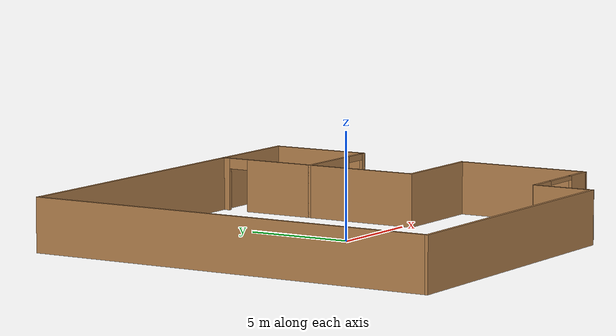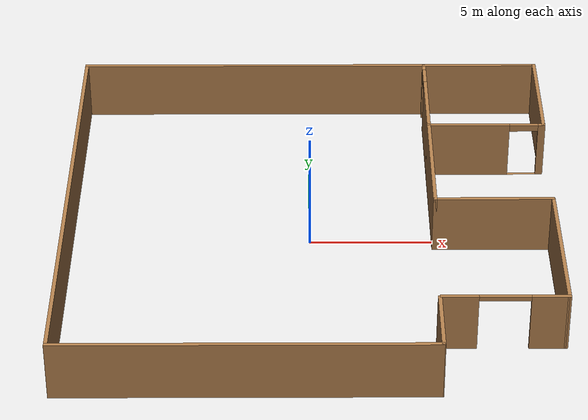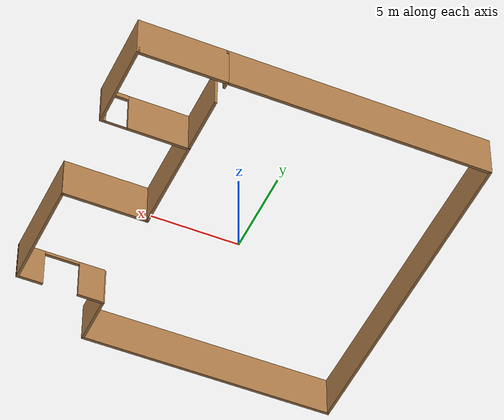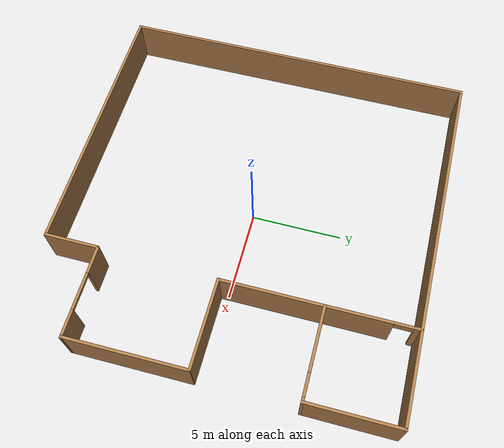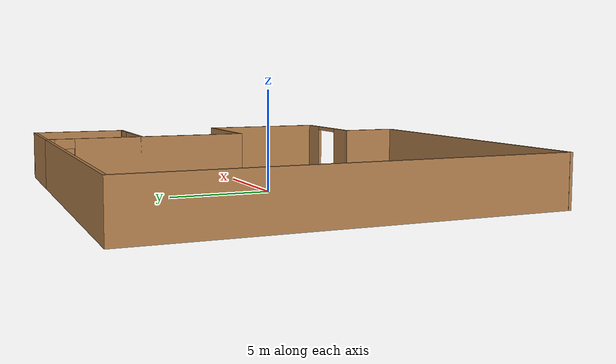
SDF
<?xml version='1.0'?>
<sdf version='1.7'>
  <model name='supermarket_worldo'>
    <pose>0.061503 0.047234 0 0 -0 0</pose>
    <link name='Wall_11'>
      <collision name='Wall_11_Collision'>
        <geometry>
          <box>
            <size>3 0.15 2.5</size>
          </box>
        </geometry>
        <pose>0 0 1.25 0 -0 0</pose>
      </collision>
      <visual name='Wall_11_Visual'>
        <pose>0 0 1.25 0 -0 0</pose>
        <geometry>
          <box>
            <size>3 0.15 2.5</size>
          </box>
        </geometry>
        <material>
          <script>
            <uri>file://media/materials/scripts/gazebo.material</uri>
            <name>Gazebo/Wood</name>
          </script>
          <ambient>0.709804 0.513726 0.352941 1</ambient>
        </material>
        <meta>
          <layer>0</layer>
        </meta>
      </visual>
      <pose>4.86312 -8.45219 0 0 -0 -1.5708</pose>
    </link>
    <link name='Wall_12'>
      <collision name='Wall_12_Collision'>
        <geometry>
          <box>
            <size>14.8327 0.15 2.5</size>
          </box>
        </geometry>
        <pose>0 0 1.25 0 -0 0</pose>
      </collision>
      <visual name='Wall_12_Visual'>
        <pose>0 0 1.25 0 -0 0</pose>
        <geometry>
          <box>
            <size>14.8327 0.15 2.5</size>
          </box>
        </geometry>
        <material>
          <script>
            <uri>file://media/materials/scripts/gazebo.material</uri>
            <name>Gazebo/Wood</name>
          </script>
          <ambient>0.709804 0.513726 0.352941 1</ambient>
        </material>
        <meta>
          <layer>0</layer>
        </meta>
      </visual>
      <pose>-2.50865 -9.87719 0 0 -0 3.14159</pose>
    </link>
    <link name='Wall_15'>
      <collision name='Wall_15_Collision'>
        <geometry>
          <box>
            <size>5 0.15 2.5</size>
          </box>
        </geometry>
        <pose>0 0 1.25 0 -0 0</pose>
      </collision>
      <visual name='Wall_15_Visual'>
        <pose>0 0 1.25 0 -0 0</pose>
        <geometry>
          <box>
            <size>5 0.15 2.5</size>
          </box>
        </geometry>
        <material>
          <script>
            <uri>file://media/materials/scripts/gazebo.material</uri>
            <name>Gazebo/Wood</name>
          </script>
          <ambient>0.709804 0.513726 0.352941 1</ambient>
        </material>
        <meta>
          <layer>0</layer>
        </meta>
      </visual>
      <pose>7.425 9.87719 0 0 -0 0</pose>
    </link>
    <link name='Wall_16'>
      <collision name='Wall_16_Collision'>
        <geometry>
          <box>
            <size>5 0.15 2.5</size>
          </box>
        </geometry>
        <pose>0 0 1.25 0 -0 0</pose>
      </collision>
      <visual name='Wall_16_Visual'>
        <pose>0 0 1.25 0 -0 0</pose>
        <geometry>
          <box>
            <size>5 0.15 2.5</size>
          </box>
        </geometry>
        <material>
          <script>
            <uri>file://media/materials/scripts/gazebo.material</uri>
            <name>Gazebo/Wood</name>
          </script>
          <ambient>0.709804 0.513726 0.352941 1</ambient>
        </material>
        <meta>
          <layer>0</layer>
        </meta>
      </visual>
      <pose>9.85 7.45219 0 0 -0 -1.5708</pose>
    </link>
    <link name='Wall_28'>
      <pose>7.425 5.02719 0 0 -0 3.14159</pose>
      <visual name='Wall_28_Visual_0'>
        <pose>-2.34745 0 1.25 0 -0 0</pose>
        <geometry>
          <box>
            <size>0.305097 0.15 2.5</size>
          </box>
        </geometry>
        <material>
          <script>
            <uri>file://media/materials/scripts/gazebo.material</uri>
            <name>Gazebo/Wood</name>
          </script>
          <ambient>0.709804 0.513726 0.352941 1</ambient>
        </material>
        <meta>
          <layer>0</layer>
        </meta>
      </visual>
      <collision name='Wall_28_Collision_0'>
        <geometry>
          <box>
            <size>0.305097 0.15 2.5</size>
          </box>
        </geometry>
        <pose>-2.34745 0 1.25 0 -0 0</pose>
      </collision>
      <visual name='Wall_28_Visual_1'>
        <pose>0.752549 0 1.25 0 -0 0</pose>
        <geometry>
          <box>
            <size>3.4949 0.15 2.5</size>
          </box>
        </geometry>
        <material>
          <script>
            <uri>file://media/materials/scripts/gazebo.material</uri>
            <name>Gazebo/Wood</name>
          </script>
          <ambient>0.709804 0.513726 0.352941 1</ambient>
        </material>
        <meta>
          <layer>0</layer>
        </meta>
      </visual>
      <collision name='Wall_28_Collision_1'>
        <geometry>
          <box>
            <size>3.4949 0.15 2.5</size>
          </box>
        </geometry>
        <pose>0.752549 0 1.25 0 -0 0</pose>
      </collision>
      <visual name='Wall_28_Visual_2'>
        <pose>-1.5949 0 0 0 -0 0</pose>
        <geometry>
          <box>
            <size>1.2 0.15 0</size>
          </box>
        </geometry>
        <material>
          <script>
            <uri>file://media/materials/scripts/gazebo.material</uri>
            <name>Gazebo/Wood</name>
          </script>
          <ambient>0.709804 0.513726 0.352941 1</ambient>
        </material>
        <meta>
          <layer>0</layer>
        </meta>
      </visual>
      <collision name='Wall_28_Collision_2'>
        <geometry>
          <box>
            <size>1.2 0.15 0</size>
          </box>
        </geometry>
        <pose>-1.5949 0 0 0 -0 0</pose>
      </collision>
      <visual name='Wall_28_Visual_3'>
        <pose>-1.5949 0 2.35 0 -0 0</pose>
        <geometry>
          <box>
            <size>1.2 0.15 0.3</size>
          </box>
        </geometry>
        <material>
          <script>
            <uri>file://media/materials/scripts/gazebo.material</uri>
            <name>Gazebo/Wood</name>
          </script>
          <ambient>0.709804 0.513726 0.352941 1</ambient>
        </material>
        <meta>
          <layer>0</layer>
        </meta>
      </visual>
      <collision name='Wall_28_Collision_3'>
        <geometry>
          <box>
            <size>1.2 0.15 0.3</size>
          </box>
        </geometry>
        <pose>-1.5949 0 2.35 0 -0 0</pose>
      </collision>
    </link>
    <link name='Wall_30'>
      <pose>7.36639 -6.97468 0 0 -0 3.14159</pose>
      <visual name='Wall_30_Visual_0'>
        <pose>-1.74198 0 1.25 0 -0 0</pose>
        <geometry>
          <box>
            <size>1.51604 0.15 2.5</size>
          </box>
        </geometry>
        <material>
          <script>
            <uri>file://media/materials/scripts/gazebo.material</uri>
            <name>Gazebo/Wood</name>
          </script>
          <ambient>0.709804 0.513726 0.352941 1</ambient>
        </material>
        <meta>
          <layer>0</layer>
        </meta>
      </visual>
      <collision name='Wall_30_Collision_0'>
        <geometry>
          <box>
            <size>1.51604 0.15 2.5</size>
          </box>
        </geometry>
        <pose>-1.74198 0 1.25 0 -0 0</pose>
      </collision>
      <visual name='Wall_30_Visual_1'>
        <pose>1.75802 0 1.25 0 -0 0</pose>
        <geometry>
          <box>
            <size>1.48396 0.15 2.5</size>
          </box>
        </geometry>
        <material>
          <script>
            <uri>file://media/materials/scripts/gazebo.material</uri>
            <name>Gazebo/Wood</name>
          </script>
          <ambient>0.709804 0.513726 0.352941 1</ambient>
        </material>
        <meta>
          <layer>0</layer>
        </meta>
      </visual>
      <collision name='Wall_30_Collision_1'>
        <geometry>
          <box>
            <size>1.48396 0.15 2.5</size>
          </box>
        </geometry>
        <pose>1.75802 0 1.25 0 -0 0</pose>
      </collision>
      <visual name='Wall_30_Visual_2'>
        <pose>0.016037 0 2.4 0 -0 0</pose>
        <geometry>
          <box>
            <size>2 0.15 0.2</size>
          </box>
        </geometry>
        <material>
          <script>
            <uri>file://media/materials/scripts/gazebo.material</uri>
            <name>Gazebo/Wood</name>
          </script>
          <ambient>0.709804 0.513726 0.352941 1</ambient>
        </material>
        <meta>
          <layer>0</layer>
        </meta>
      </visual>
      <collision name='Wall_30_Collision_2'>
        <geometry>
          <box>
            <size>2 0.15 0.2</size>
          </box>
        </geometry>
        <pose>0.016037 0 2.4 0 -0 0</pose>
      </collision>
    </link>
    <link name='Wall_32'>
      <collision name='Wall_32_Collision'>
        <geometry>
          <box>
            <size>6.63117 0.15 2.5</size>
          </box>
        </geometry>
        <pose>0 0 1.25 0 -0 0</pose>
      </collision>
      <visual name='Wall_32_Visual'>
        <pose>0 0 1.25 0 -0 0</pose>
        <geometry>
          <box>
            <size>6.63117 0.15 2.5</size>
          </box>
        </geometry>
        <material>
          <script>
            <uri>file://media/materials/scripts/gazebo.material</uri>
            <name>Gazebo/Wood</name>
          </script>
          <ambient>0.709804 0.513726 0.352941 1</ambient>
        </material>
        <meta>
          <layer>0</layer>
        </meta>
      </visual>
      <pose>9.77947 -3.7341 0 0 -0 1.57448</pose>
    </link>
    <link name='Wall_34'>
      <collision name='Wall_34_Collision'>
        <geometry>
          <box>
            <size>4.9 0.15 2.5</size>
          </box>
        </geometry>
        <pose>0 0 1.25 0 -0 0</pose>
      </collision>
      <visual name='Wall_34_Visual'>
        <pose>0 0 1.25 0 -0 0</pose>
        <geometry>
          <box>
            <size>4.9 0.15 2.5</size>
          </box>
        </geometry>
        <material>
          <script>
            <uri>file://media/materials/scripts/gazebo.material</uri>
            <name>Gazebo/Wood</name>
          </script>
          <ambient>0.709804 0.513726 0.352941 1</ambient>
        </material>
        <meta>
          <layer>0</layer>
        </meta>
      </visual>
      <pose>7.375 -0.472814 0 0 -0 0</pose>
    </link>
    <link name='Wall_4'>
      <collision name='Wall_4_Collision'>
        <geometry>
          <box>
            <size>19.75 0.15 2.5</size>
          </box>
        </geometry>
        <pose>0 0 1.25 0 -0 0</pose>
      </collision>
      <visual name='Wall_4_Visual'>
        <pose>0 0 1.25 0 -0 0</pose>
        <geometry>
          <box>
            <size>19.75 0.15 2.5</size>
          </box>
        </geometry>
        <material>
          <script>
            <uri>file://media/materials/scripts/gazebo.material</uri>
            <name>Gazebo/Wood</name>
          </script>
          <ambient>0.709804 0.513726 0.352941 1</ambient>
        </material>
        <meta>
          <layer>0</layer>
        </meta>
      </visual>
      <pose>-9.85 0.077186 0 0 -0 1.5708</pose>
    </link>
    <link name='Wall_6'>
      <collision name='Wall_6_Collision'>
        <geometry>
          <box>
            <size>15 0.15 2.5</size>
          </box>
        </geometry>
        <pose>0 0 1.25 0 -0 0</pose>
      </collision>
      <visual name='Wall_6_Visual'>
        <pose>0 0 1.25 0 -0 0</pose>
        <geometry>
          <box>
            <size>15 0.15 2.5</size>
          </box>
        </geometry>
        <material>
          <script>
            <uri>file://media/materials/scripts/gazebo.material</uri>
            <name>Gazebo/Wood</name>
          </script>
          <ambient>0.709804 0.513726 0.352941 1</ambient>
        </material>
        <meta>
          <layer>0</layer>
        </meta>
      </visual>
      <pose>-2.425 9.87719 0 0 -0 0</pose>
    </link>
    <link name='Wall_7'>
      <pose>5 4.70219 0 0 -0 -1.5708</pose>
      <visual name='Wall_7_Visual_0'>
        <pose>-5.02354 0 1.25 0 -0 0</pose>
        <geometry>
          <box>
            <size>0.452913 0.15 2.5</size>
          </box>
        </geometry>
        <material>
          <script>
            <uri>file://media/materials/scripts/gazebo.material</uri>
            <name>Gazebo/Wood</name>
          </script>
          <ambient>0.709804 0.513726 0.352941 1</ambient>
        </material>
        <meta>
          <layer>0</layer>
        </meta>
      </visual>
      <collision name='Wall_7_Collision_0'>
        <geometry>
          <box>
            <size>0.452913 0.15 2.5</size>
          </box>
        </geometry>
        <pose>-5.02354 0 1.25 0 -0 0</pose>
      </collision>
      <visual name='Wall_7_Visual_1'>
        <pose>0.726456 0 1.25 0 -0 0</pose>
        <geometry>
          <box>
            <size>9.04709 0.15 2.5</size>
          </box>
        </geometry>
        <material>
          <script>
            <uri>file://media/materials/scripts/gazebo.material</uri>
            <name>Gazebo/Wood</name>
          </script>
          <ambient>0.709804 0.513726 0.352941 1</ambient>
        </material>
        <meta>
          <layer>0</layer>
        </meta>
      </visual>
      <collision name='Wall_7_Collision_1'>
        <geometry>
          <box>
            <size>9.04709 0.15 2.5</size>
          </box>
        </geometry>
        <pose>0.726456 0 1.25 0 -0 0</pose>
      </collision>
      <visual name='Wall_7_Visual_2'>
        <pose>-4.29709 0 2.25 0 -0 0</pose>
        <geometry>
          <box>
            <size>1 0.15 0.5</size>
          </box>
        </geometry>
        <material>
          <script>
            <uri>file://media/materials/scripts/gazebo.material</uri>
            <name>Gazebo/Wood</name>
          </script>
          <ambient>0.709804 0.513726 0.352941 1</ambient>
        </material>
        <meta>
          <layer>0</layer>
        </meta>
      </visual>
      <collision name='Wall_7_Collision_2'>
        <geometry>
          <box>
            <size>1 0.15 0.5</size>
          </box>
        </geometry>
        <pose>-4.29709 0 2.25 0 -0 0</pose>
      </collision>
    </link>
    <static>1</static>
  </model>
</sdf>
